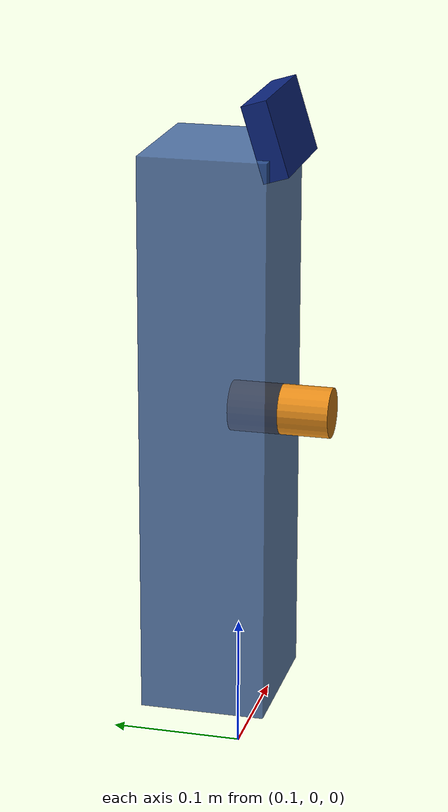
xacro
<?xml version="1.0"?>
<robot xmlns:xacro="http://www.ros.org/wiki/xacro" name="charging_station">

  <!-- =============================== 位置参数 =============================== -->
  <xacro:arg name="x" default="0.20"/>   <!-- 主机箱底部中心 X 坐标 (m) -->
  <xacro:arg name="y" default="0.04"/>   <!-- 主机箱底部中心 Y 坐标 (m) -->
  <xacro:arg name="z" default="0.00"/>   <!-- 主机箱底部中心 Z 坐标 (m) -->

  <!-- 世界固定根链接（与机械臂 world 帧同名，独立加载时需确保唯一性） -->
  <link name="world"/>

  <!-- 主机箱：固定于 world，origin 为底部中心 -->
  <joint name="charging_station_fixed" type="fixed">
    <parent link="world"/>
    <child  link="charging_station_base"/>
    <origin xyz="$(arg x) $(arg y) $(arg z)" rpy="0 0 0"/>
  </joint>

  <!-- =============================== 主机箱 =============================== -->
  <link name="charging_station_base">
    <visual>
      <!-- origin 向 Z 偏移半高，使 box 底面与 joint origin 对齐 -->
      <origin xyz="0 0 0.225" rpy="0 0 0"/>
      <geometry>
        <box size="0.12 0.10 0.45"/>
      </geometry>
      <material name="station_blue_gray">
        <color rgba="0.25 0.40 0.65 0.85"/>
      </material>
    </visual>
    <collision>
      <origin xyz="0 0 0.225" rpy="0 0 0"/>
      <geometry>
        <box size="0.12 0.10 0.45"/>
      </geometry>
    </collision>
  </link>

  <!-- =============================== 顶部面板 =============================== -->
  <joint name="top_panel_joint" type="fixed">
    <parent link="charging_station_base"/>
    <child  link="top_panel"/>
    <origin xyz="0 -0.055 0.435" rpy="-0.3 0 0"/>  <!-- 略向前倾 -->
  </joint>

  <link name="top_panel">
    <visual>
      <origin xyz="0 0 0.03" rpy="0 0 0"/>
      <geometry>
        <box size="0.10 0.02 0.06"/>
      </geometry>
      <material name="panel_dark_blue">
        <color rgba="0.05 0.15 0.50 1.00"/>
      </material>
    </visual>
  </link>

  <!-- =============================== 加油枪插槽 =============================== -->
  <!--
    插槽位于主机箱正面（-y 方向），距地面 0.24 m（与 gun_pose.z 对齐）。
    圆柱轴默认沿 Z 轴，通过 rpy="1.5708 0 0" 旋转使轴线指向 +Y（朝机械臂方向）。
  -->
  <joint name="nozzle_slot_joint" type="fixed">
    <parent link="charging_station_base"/>
    <child  link="nozzle_slot"/>
    <origin xyz="0 -0.05 0.24" rpy="1.5708 0 0"/>
  </joint>

  <link name="nozzle_slot">
    <visual>
      <origin xyz="0 0 0" rpy="0 0 0"/>
      <geometry>
        <cylinder radius="0.02" length="0.08"/>
      </geometry>
      <material name="nozzle_orange">
        <color rgba="0.90 0.55 0.10 1.00"/>
      </material>
    </visual>
    <collision>
      <origin xyz="0 0 0" rpy="0 0 0"/>
      <geometry>
        <cylinder radius="0.02" length="0.08"/>
      </geometry>
    </collision>
  </link>

</robot>
